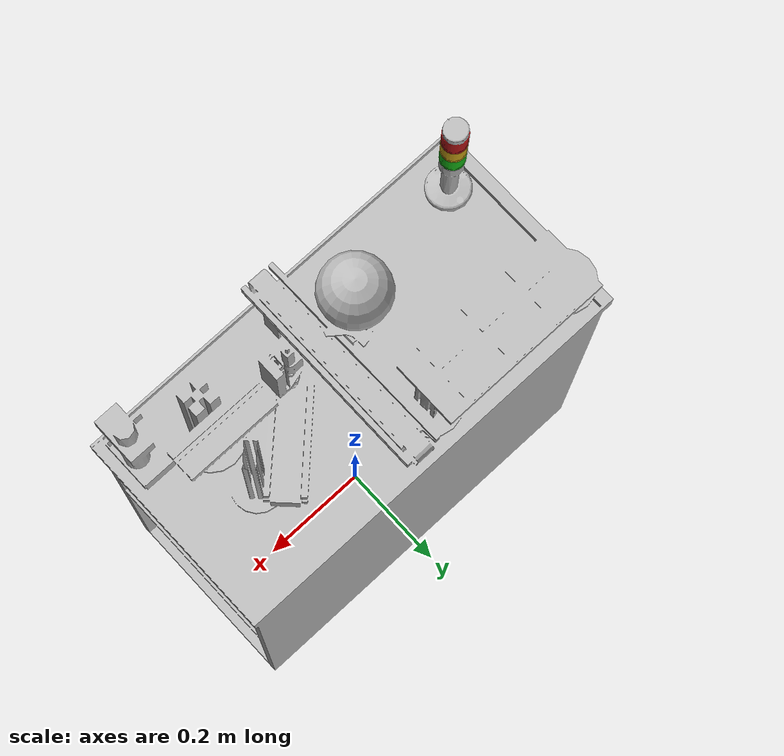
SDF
<?xml version="1.0" ?>
<sdf version="1.4">
  <model name="mps_cap">
    <static>true</static>
    <link name="body">
      <pose>0 0 0.01 0 0 0</pose>
      <gravity>true</gravity>
      <inertial>
	<pose>0 0 0.005 0 0 0</pose>
        <mass>50</mass>
        <inertia>
	  <!-- according to http://en.wikipedia.org/wiki/List_of_moments_of_inertia for a solid box of width: 0.35, height:0.7, depth: 0.7, mass m=30 -->
          <ixx>2.45</ixx>
          <ixy>0.0</ixy>
          <ixz>0.0</ixz>
          <iyy>1.53125</iyy>
          <iyz>0.0</iyz>
          <izz>1.53125</izz>
        </inertia>
      </inertial>
 <visual name="body-visual">
	<pose>-0.35 .172 0 0 0 1.57</pose>
        <geometry>
          <mesh>
            <uri>model://mps_cap/meshes/mps_cap.dae</uri>
          </mesh>
        </geometry>
	<material>
          <script>
            <uri>model://mps_cap/materials/scripts</uri>
            <uri>model://mps_cap/materials/textures</uri>
            <name>mps_cap</name>
          </script>
        </material>
        <cast_shadows>false</cast_shadows>
      </visual>      <!-- Shelf: -->
      <collision name="collision_shelf">
        <pose>-0.175 0.105 0.895 0 0 0 </pose>
        <geometry>
	  <box>
	    <size>0.295 0.12 0.01</size>
          </box>
        </geometry>
        <surface>
          <contact>
            <ode>
              <min_depth>0.01</min_depth>
            </ode>
          </contact>
        </surface>
      </collision>

      <!-- Collision Elements: -->
      <collision name="collision_conveyor_belt">
        <pose>0.025 0 0.88 0 0 0 </pose>
        <geometry>
	  <box>
	    <size>0.03 0.35 0.04</size>
          </box>
        </geometry>
        <surface>
          <contact>
            <ode>
              <min_depth>0.01</min_depth>
            </ode>
          </contact>
        </surface>
      </collision>
      <collision name="collision_conveyor_belt_border_west">
        <pose>0 0 0.9 0 0 0 </pose>
        <geometry>
	  <box>
	    <size>0.01 0.35 0.02</size>
          </box>
        </geometry>
        <surface>
          <contact>
            <ode>
              <min_depth>0.01</min_depth>
            </ode>
          </contact>
        </surface>
      </collision>
      <collision name="collision_conveyor_belt_border_east">
        <pose>0.05 0 0.9 0 0 0 </pose>
        <geometry>
	  <box>
	    <size>0.01 0.35 0.02</size>
          </box>
        </geometry>
        <surface>
          <contact>
            <ode>
              <min_depth>0.01</min_depth>
            </ode>
          </contact>
        </surface>
      </collision>

      <!-- Box -->
      <collision name="collision_base_box_ground">
        <pose>0 0 0.06 0 0 0 </pose>
        <geometry>
	  <box>
	    <size>0.69 0.35 0.01</size>
          </box>
        </geometry>
        <surface>
          <contact>
            <ode>
              <min_depth>0.01</min_depth>
            </ode>
          </contact>
        </surface>
      </collision>
      <collision name="collision_base_box_wall_south">
        <pose>0 -0.175 0.42 0 0 0 </pose>
        <geometry>
	  <box>
	    <size>0.69 0.01 0.72</size>
          </box>
        </geometry>
        <surface>
          <contact>
            <ode>
              <min_depth>0.01</min_depth>
            </ode>
          </contact>
        </surface>
      </collision>
      <collision name="collision_base_box_wall_north">
        <pose>0 0.175 0.42 0 0 0 </pose>
        <geometry>
	  <box>
	    <size>0.69 0.01 0.72</size>
          </box>
        </geometry>
        <surface>
          <contact>
            <ode>
              <min_depth>0.01</min_depth>
            </ode>
          </contact>
        </surface>
      </collision>
      <!-- On both ends of the mps are transparent walls a laser sensor can look through, in the middle are solid walls -->
      <collision name="collision_base_box_wall_middle_1">
        <pose>-0.035 0 0.42 0 0 0 </pose>
        <geometry>
	  <box>
	    <size>0.01 0.35 0.72</size>
          </box>
        </geometry>
        <surface>
          <contact>
            <ode>
              <min_depth>0.01</min_depth>
            </ode>
          </contact>
        </surface>
      </collision>
      <collision name="collision_base_box_wall_middle_2">
        <pose>0.035 0 0.42 0 0 0 </pose>
        <geometry>
	  <box>
	    <size>0.01 0.35 0.72</size>
          </box>
        </geometry>
        <surface>
          <contact>
            <ode>
              <min_depth>0.01</min_depth>
            </ode>
          </contact>
        </surface>
      </collision>
      <collision name="collision_base_box_top">
        <pose>0 0 0.78 0 0 0 </pose>
        <geometry>
	  <box>
	    <size>0.69 0.35 0.01</size>
          </box>
        </geometry>
        <surface>
          <contact>
            <ode>
              <min_depth>0.01</min_depth>
            </ode>
          </contact>
        </surface>
      </collision>
      <collision name="collision_wheels">
	<!-- Collision to avoid that the box falls down (In reality done by wheels) -->
        <pose>0 0 0.01 0 0 0 </pose>
        <geometry>
	  <box>
	    <size>0.69 0.35 0.02</size>
          </box>
        </geometry>
        <surface>
          <contact>
            <ode>
              <min_depth>0.01</min_depth>
            </ode>
          </contact>
        </surface>
      </collision>
      <visual name="have_cap">
        <cast_shadows>false</cast_shadows>
        <geometry>
          <sphere>
            <radius>0.05</radius>
          </sphere>
        </geometry>
        <pose>0 0 1.22 0 0 0</pose>
      </visual>
    </link>

    <include>
      <name>light_signals</name>
      <uri>model://light_signals</uri>
      <pose>-0.2905 -0.113 0.925 0 0 0</pose>
    </include>

    <link name="mps_tag_output">
      <pose>0.025 -0.175 0.54 0 0 -1.57</pose>
    </link>
    <link name="mps_tag_input">
      <pose>0.025 0.175 0.54 0 0 1.57</pose>
    </link>

    <joint name="mps_light_joint" type="revolute">
      <parent>body</parent>
      <child>light_signals::link</child>
      <axis>
        <limit>
          <lower>0</lower>
          <upper>0</upper>
        </limit>
        <xyz>0 0 1</xyz>
      </axis>
    </joint>

    <!-- Plugin to control the MPS and detect workpieces -->
    <plugin name="MPS" filename="libmps.so"/>
  </model>
</sdf>

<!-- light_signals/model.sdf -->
<sdf version="1.4">
  <model name="light_signal">
    <!-- The center is the bottom of the green light -->
    <pose>0 0 0.915 0 0 0 </pose>
    <static>true</static>
    <link name="link">
      <visual name="redon">
        <pose>0 0 0.085 0 0 0 </pose>
	<cast_shadows>false</cast_shadows>
        <geometry>
          <cylinder>
	    <radius>0.0195</radius>
	    <length>0.034</length>
          </cylinder>
        </geometry>
	<material>
	  <ambient>0.8 0 0 0.8</ambient>
	  <diffuse>0.8 0.0 0.0 0.8</diffuse>
	  <emissive>1.0 0.3 0.3 1.0</emissive>
	</material>
      </visual>
      <visual name="yellowon">
        <pose>0 0 0.051 0 0 0 </pose>
	<cast_shadows>false</cast_shadows>
        <geometry>
          <cylinder>
	    <radius>0.0195</radius>
	    <length>0.034</length>
          </cylinder>
        </geometry>
	<material>
	  <ambient>0.9 0.7 0 0.8</ambient>
	  <diffuse>0.9 0.7 0.0 0.8</diffuse>
	  <emissive>1.0 0.9 0.3 1.0</emissive>
	</material>
      </visual>
      <visual name="greenon">
        <pose>0 0 0.017 0 0 0 </pose>
	<cast_shadows>false</cast_shadows>
        <geometry>
          <cylinder>
	    <radius>0.0195</radius>
	    <length>0.034</length>
          </cylinder>
        </geometry>
	<material>
	  <ambient>0.0 0.8 0 0.8</ambient>
	  <diffuse>0.0 0.8 0.0 0.8</diffuse>
	  <emissive>0.3 1.0 0.3 1.0</emissive>
	</material>
     </visual>
    </link>

    <!-- Plugin to control the light signal -->
    <plugin name="MPS" filename="liblight_control.so"/>
  </model>
</sdf>
